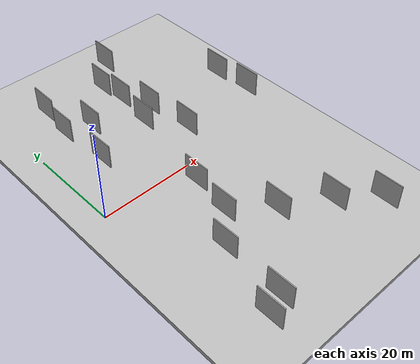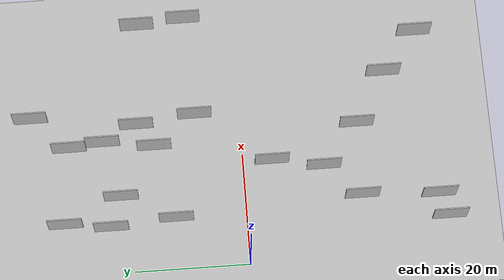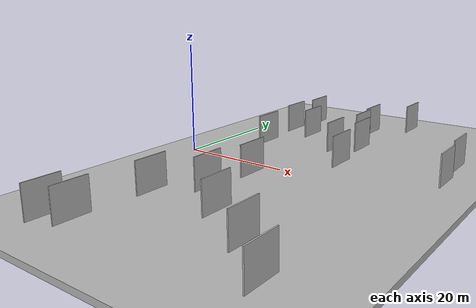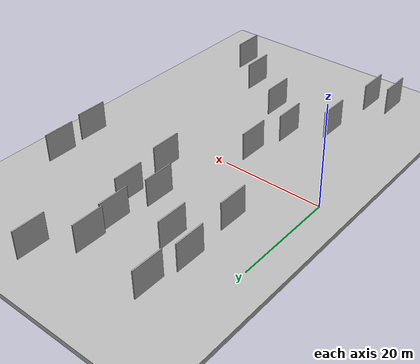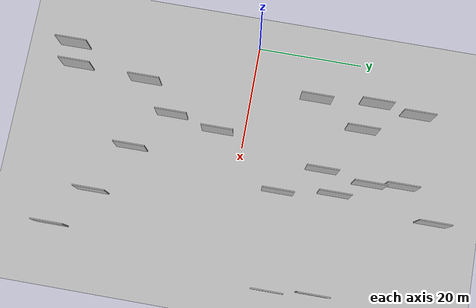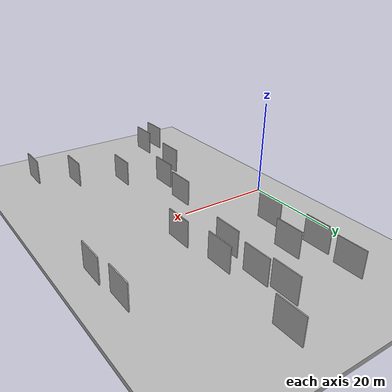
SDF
<?xml version="1.0" encoding="utf-8"?>

<sdf version="1.6">

   <world name="default">

      <gui fullscreen="0">

         <camera name="user_camera">

            <pose>-15 0 4.57585 0 0 0</pose>

            <view_controller>orbit</view_controller>

         </camera>

      </gui>

      <scene>

         <sky>

           <clouds>

             <speed>12</speed>

           </clouds>

         </sky>

         <ambient>0.4 0.4 0.4 1</ambient>

         <background>0.7 0.7 0.7 1</background>

         <shadows>1</shadows>

      </scene>

      <gravity>0 0 -9.8066</gravity>

      <magnetic_field>6e-06 2.3e-05 -4.2e-05</magnetic_field>

      <physics default="0" name="default_physics" type="ode">

         <ode>

            <solver>

               <type>quick</type>

               <iters>10</iters>

               <sor>1.0</sor>

               <use_dynamic_moi_rescaling>0</use_dynamic_moi_rescaling>

            </solver>

            <constraints>

               <cfm>0</cfm>

               <erp>0.2</erp>

               <contact_max_correcting_vel>100</contact_max_correcting_vel>

               <contact_surface_layer>0.001</contact_surface_layer>

            </constraints>

         </ode>

         <max_step_size>0.004</max_step_size>

         <real_time_factor>1</real_time_factor>

         <real_time_update_rate>250</real_time_update_rate>

      </physics>

      <light name="sun" type="directional">

         <cast_shadows>1</cast_shadows>

         <pose>0 0 10 0 0 0</pose>

         <diffuse>0.8 0.8 0.8 1</diffuse>

         <specular>0.2 0.2 0.2 1</specular>

         <attenuation>

            <range>1000</range>

            <constant>0.9</constant>

            <linear>0.01</linear>

            <quadratic>0.001</quadratic>

         </attenuation>

         <direction>-0.5 0.1 -0.9</direction>

      </light>

      <include>

         <name>ground_plane_1</name>

         <uri>model://HANNAS_ground_plane</uri>

         <pose>0 0 0  0 0 0</pose>

      </include>

      <include>

         <name>ground_plane_2</name>

         <uri>model://HANNAS_ground_plane</uri>

         <pose>100 0 0  0 0 0</pose>

      </include>

      <model name="HANNAS_wall_1">

         <static>1</static>

         <pose frame="">27.3750 7.9756 0.0 0.000000 0.000000 1.570796</pose>

         <link name="link">

            <pose frame="">0 0 3.00 0 0 0</pose>

            <collision name="collision">

               <geometry>

                  <box>

                     <size>6.00 0.2 6.00</size>

                  </box>

               </geometry>

               <max_contacts>10</max_contacts>

               <surface>

                  <contact>

                     <ode/>

                  </contact>

                  <bounce/>

                  <friction>

                     <torsional>

                        <ode/>

                     </torsional>

                     <ode/>

                  </friction>

               </surface>

            </collision>

            <visual name="visual">

               <cast_shadows>0</cast_shadows>

               <geometry>

                  <box>

                     <size>6.00 0.2 6.00</size>

                  </box>

               </geometry>

               <material>

                  <script>

                     <uri>model://HANNAS_wall/materials/scripts</uri>

                     <uri>model://HANNAS_wall/materials/textures</uri>

                     <name>vrc/HANNAS_wall</name>

                  </script>

               </material>

            </visual>

            <self_collide>0</self_collide>

            <enable_wind>0</enable_wind>

            <kinematic>0</kinematic>

         </link>

      </model>

      <model name="HANNAS_wall_2">

         <static>1</static>

         <pose frame="">28.4250 36.9319 0.0 0.000000 0.000000 1.570796</pose>

         <link name="link">

            <pose frame="">0 0 3.00 0 0 0</pose>

            <collision name="collision">

               <geometry>

                  <box>

                     <size>6.00 0.2 6.00</size>

                  </box>

               </geometry>

               <max_contacts>10</max_contacts>

               <surface>

                  <contact>

                     <ode/>

                  </contact>

                  <bounce/>

                  <friction>

                     <torsional>

                        <ode/>

                     </torsional>

                     <ode/>

                  </friction>

               </surface>

            </collision>

            <visual name="visual">

               <cast_shadows>0</cast_shadows>

               <geometry>

                  <box>

                     <size>6.00 0.2 6.00</size>

                  </box>

               </geometry>

               <material>

                  <script>

                     <uri>model://HANNAS_wall/materials/scripts</uri>

                     <uri>model://HANNAS_wall/materials/textures</uri>

                     <name>vrc/HANNAS_wall</name>

                  </script>

               </material>

            </visual>

            <self_collide>0</self_collide>

            <enable_wind>0</enable_wind>

            <kinematic>0</kinematic>

         </link>

      </model>

      <model name="HANNAS_wall_3">

         <static>1</static>

         <pose frame="">21.9895 15.3984 0.0 0.000000 0.000000 1.570796</pose>

         <link name="link">

            <pose frame="">0 0 3.00 0 0 0</pose>

            <collision name="collision">

               <geometry>

                  <box>

                     <size>6.00 0.2 6.00</size>

                  </box>

               </geometry>

               <max_contacts>10</max_contacts>

               <surface>

                  <contact>

                     <ode/>

                  </contact>

                  <bounce/>

                  <friction>

                     <torsional>

                        <ode/>

                     </torsional>

                     <ode/>

                  </friction>

               </surface>

            </collision>

            <visual name="visual">

               <cast_shadows>0</cast_shadows>

               <geometry>

                  <box>

                     <size>6.00 0.2 6.00</size>

                  </box>

               </geometry>

               <material>

                  <script>

                     <uri>model://HANNAS_wall/materials/scripts</uri>

                     <uri>model://HANNAS_wall/materials/textures</uri>

                     <name>vrc/HANNAS_wall</name>

                  </script>

               </material>

            </visual>

            <self_collide>0</self_collide>

            <enable_wind>0</enable_wind>

            <kinematic>0</kinematic>

         </link>

      </model>

      <model name="HANNAS_wall_4">

         <static>1</static>

         <pose frame="">13.1419 21.6490 0.0 0.000000 0.000000 1.570796</pose>

         <link name="link">

            <pose frame="">0 0 3.00 0 0 0</pose>

            <collision name="collision">

               <geometry>

                  <box>

                     <size>6.00 0.2 6.00</size>

                  </box>

               </geometry>

               <max_contacts>10</max_contacts>

               <surface>

                  <contact>

                     <ode/>

                  </contact>

                  <bounce/>

                  <friction>

                     <torsional>

                        <ode/>

                     </torsional>

                     <ode/>

                  </friction>

               </surface>

            </collision>

            <visual name="visual">

               <cast_shadows>0</cast_shadows>

               <geometry>

                  <box>

                     <size>6.00 0.2 6.00</size>

                  </box>

               </geometry>

               <material>

                  <script>

                     <uri>model://HANNAS_wall/materials/scripts</uri>

                     <uri>model://HANNAS_wall/materials/textures</uri>

                     <name>vrc/HANNAS_wall</name>

                  </script>

               </material>

            </visual>

            <self_collide>0</self_collide>

            <enable_wind>0</enable_wind>

            <kinematic>0</kinematic>

         </link>

      </model>

      <model name="HANNAS_wall_5">

         <static>1</static>

         <pose frame="">9.8800 -33.7076 0.0 0.000000 0.000000 1.570796</pose>

         <link name="link">

            <pose frame="">0 0 3.00 0 0 0</pose>

            <collision name="collision">

               <geometry>

                  <box>

                     <size>6.00 0.2 6.00</size>

                  </box>

               </geometry>

               <max_contacts>10</max_contacts>

               <surface>

                  <contact>

                     <ode/>

                  </contact>

                  <bounce/>

                  <friction>

                     <torsional>

                        <ode/>

                     </torsional>

                     <ode/>

                  </friction>

               </surface>

            </collision>

            <visual name="visual">

               <cast_shadows>0</cast_shadows>

               <geometry>

                  <box>

                     <size>6.00 0.2 6.00</size>

                  </box>

               </geometry>

               <material>

                  <script>

                     <uri>model://HANNAS_wall/materials/scripts</uri>

                     <uri>model://HANNAS_wall/materials/textures</uri>

                     <name>vrc/HANNAS_wall</name>

                  </script>

               </material>

            </visual>

            <self_collide>0</self_collide>

            <enable_wind>0</enable_wind>

            <kinematic>0</kinematic>

         </link>

      </model>

      <model name="HANNAS_wall_6">

         <static>1</static>

         <pose frame="">16.3582 -14.0604 0.0 0.000000 0.000000 1.570796</pose>

         <link name="link">

            <pose frame="">0 0 3.00 0 0 0</pose>

            <collision name="collision">

               <geometry>

                  <box>

                     <size>6.00 0.2 6.00</size>

                  </box>

               </geometry>

               <max_contacts>10</max_contacts>

               <surface>

                  <contact>

                     <ode/>

                  </contact>

                  <bounce/>

                  <friction>

                     <torsional>

                        <ode/>

                     </torsional>

                     <ode/>

                  </friction>

               </surface>

            </collision>

            <visual name="visual">

               <cast_shadows>0</cast_shadows>

               <geometry>

                  <box>

                     <size>6.00 0.2 6.00</size>

                  </box>

               </geometry>

               <material>

                  <script>

                     <uri>model://HANNAS_wall/materials/scripts</uri>

                     <uri>model://HANNAS_wall/materials/textures</uri>

                     <name>vrc/HANNAS_wall</name>

                  </script>

               </material>

            </visual>

            <self_collide>0</self_collide>

            <enable_wind>0</enable_wind>

            <kinematic>0</kinematic>

         </link>

      </model>

      <model name="HANNAS_wall_7">

         <static>1</static>

         <pose frame="">10.6067 -20.3190 0.0 0.000000 0.000000 1.570796</pose>

         <link name="link">

            <pose frame="">0 0 3.00 0 0 0</pose>

            <collision name="collision">

               <geometry>

                  <box>

                     <size>6.00 0.2 6.00</size>

                  </box>

               </geometry>

               <max_contacts>10</max_contacts>

               <surface>

                  <contact>

                     <ode/>

                  </contact>

                  <bounce/>

                  <friction>

                     <torsional>

                        <ode/>

                     </torsional>

                     <ode/>

                  </friction>

               </surface>

            </collision>

            <visual name="visual">

               <cast_shadows>0</cast_shadows>

               <geometry>

                  <box>

                     <size>6.00 0.2 6.00</size>

                  </box>

               </geometry>

               <material>

                  <script>

                     <uri>model://HANNAS_wall/materials/scripts</uri>

                     <uri>model://HANNAS_wall/materials/textures</uri>

                     <name>vrc/HANNAS_wall</name>

                  </script>

               </material>

            </visual>

            <self_collide>0</self_collide>

            <enable_wind>0</enable_wind>

            <kinematic>0</kinematic>

         </link>

      </model>

      <model name="HANNAS_wall_8">

         <static>1</static>

         <pose frame="">45.6491 8.9044 0.0 0.000000 0.000000 1.570796</pose>

         <link name="link">

            <pose frame="">0 0 3.00 0 0 0</pose>

            <collision name="collision">

               <geometry>

                  <box>

                     <size>6.00 0.2 6.00</size>

                  </box>

               </geometry>

               <max_contacts>10</max_contacts>

               <surface>

                  <contact>

                     <ode/>

                  </contact>

                  <bounce/>

                  <friction>

                     <torsional>

                        <ode/>

                     </torsional>

                     <ode/>

                  </friction>

               </surface>

            </collision>

            <visual name="visual">

               <cast_shadows>0</cast_shadows>

               <geometry>

                  <box>

                     <size>6.00 0.2 6.00</size>

                  </box>

               </geometry>

               <material>

                  <script>

                     <uri>model://HANNAS_wall/materials/scripts</uri>

                     <uri>model://HANNAS_wall/materials/textures</uri>

                     <name>vrc/HANNAS_wall</name>

                  </script>

               </material>

            </visual>

            <self_collide>0</self_collide>

            <enable_wind>0</enable_wind>

            <kinematic>0</kinematic>

         </link>

      </model>

      <model name="HANNAS_wall_9">

         <static>1</static>

         <pose frame="">23.7692 -20.4588 0.0 0.000000 0.000000 1.570796</pose>

         <link name="link">

            <pose frame="">0 0 3.00 0 0 0</pose>

            <collision name="collision">

               <geometry>

                  <box>

                     <size>6.00 0.2 6.00</size>

                  </box>

               </geometry>

               <max_contacts>10</max_contacts>

               <surface>

                  <contact>

                     <ode/>

                  </contact>

                  <bounce/>

                  <friction>

                     <torsional>

                        <ode/>

                     </torsional>

                     <ode/>

                  </friction>

               </surface>

            </collision>

            <visual name="visual">

               <cast_shadows>0</cast_shadows>

               <geometry>

                  <box>

                     <size>6.00 0.2 6.00</size>

                  </box>

               </geometry>

               <material>

                  <script>

                     <uri>model://HANNAS_wall/materials/scripts</uri>

                     <uri>model://HANNAS_wall/materials/textures</uri>

                     <name>vrc/HANNAS_wall</name>

                  </script>

               </material>

            </visual>

            <self_collide>0</self_collide>

            <enable_wind>0</enable_wind>

            <kinematic>0</kinematic>

         </link>

      </model>

      <model name="HANNAS_wall_10">

         <static>1</static>

         <pose frame="">44.8782 17.2333 0.0 0.000000 0.000000 1.570796</pose>

         <link name="link">

            <pose frame="">0 0 3.00 0 0 0</pose>

            <collision name="collision">

               <geometry>

                  <box>

                     <size>6.00 0.2 6.00</size>

                  </box>

               </geometry>

               <max_contacts>10</max_contacts>

               <surface>

                  <contact>

                     <ode/>

                  </contact>

                  <bounce/>

                  <friction>

                     <torsional>

                        <ode/>

                     </torsional>

                     <ode/>

                  </friction>

               </surface>

            </collision>

            <visual name="visual">

               <cast_shadows>0</cast_shadows>

               <geometry>

                  <box>

                     <size>6.00 0.2 6.00</size>

                  </box>

               </geometry>

               <material>

                  <script>

                     <uri>model://HANNAS_wall/materials/scripts</uri>

                     <uri>model://HANNAS_wall/materials/textures</uri>

                     <name>vrc/HANNAS_wall</name>

                  </script>

               </material>

            </visual>

            <self_collide>0</self_collide>

            <enable_wind>0</enable_wind>

            <kinematic>0</kinematic>

         </link>

      </model>

      <model name="HANNAS_wall_11">

         <static>1</static>

         <pose frame="">33.0308 -26.0129 0.0 0.000000 0.000000 1.570796</pose>

         <link name="link">

            <pose frame="">0 0 3.00 0 0 0</pose>

            <collision name="collision">

               <geometry>

                  <box>

                     <size>6.00 0.2 6.00</size>

                  </box>

               </geometry>

               <max_contacts>10</max_contacts>

               <surface>

                  <contact>

                     <ode/>

                  </contact>

                  <bounce/>

                  <friction>

                     <torsional>

                        <ode/>

                     </torsional>

                     <ode/>

                  </friction>

               </surface>

            </collision>

            <visual name="visual">

               <cast_shadows>0</cast_shadows>

               <geometry>

                  <box>

                     <size>6.00 0.2 6.00</size>

                  </box>

               </geometry>

               <material>

                  <script>

                     <uri>model://HANNAS_wall/materials/scripts</uri>

                     <uri>model://HANNAS_wall/materials/textures</uri>

                     <name>vrc/HANNAS_wall</name>

                  </script>

               </material>

            </visual>

            <self_collide>0</self_collide>

            <enable_wind>0</enable_wind>

            <kinematic>0</kinematic>

         </link>

      </model>

      <model name="HANNAS_wall_12">

         <static>1</static>

         <pose frame="">23.2267 24.4072 0.0 0.000000 0.000000 1.570796</pose>

         <link name="link">

            <pose frame="">0 0 3.00 0 0 0</pose>

            <collision name="collision">

               <geometry>

                  <box>

                     <size>6.00 0.2 6.00</size>

                  </box>

               </geometry>

               <max_contacts>10</max_contacts>

               <surface>

                  <contact>

                     <ode/>

                  </contact>

                  <bounce/>

                  <friction>

                     <torsional>

                        <ode/>

                     </torsional>

                     <ode/>

                  </friction>

               </surface>

            </collision>

            <visual name="visual">

               <cast_shadows>0</cast_shadows>

               <geometry>

                  <box>

                     <size>6.00 0.2 6.00</size>

                  </box>

               </geometry>

               <material>

                  <script>

                     <uri>model://HANNAS_wall/materials/scripts</uri>

                     <uri>model://HANNAS_wall/materials/textures</uri>

                     <name>vrc/HANNAS_wall</name>

                  </script>

               </material>

            </visual>

            <self_collide>0</self_collide>

            <enable_wind>0</enable_wind>

            <kinematic>0</kinematic>

         </link>

      </model>

      <model name="HANNAS_wall_13">

         <static>1</static>

         <pose frame="">7.7175 23.6009 0.0 0.000000 0.000000 1.570796</pose>

         <link name="link">

            <pose frame="">0 0 3.00 0 0 0</pose>

            <collision name="collision">

               <geometry>

                  <box>

                     <size>6.00 0.2 6.00</size>

                  </box>

               </geometry>

               <max_contacts>10</max_contacts>

               <surface>

                  <contact>

                     <ode/>

                  </contact>

                  <bounce/>

                  <friction>

                     <torsional>

                        <ode/>

                     </torsional>

                     <ode/>

                  </friction>

               </surface>

            </collision>

            <visual name="visual">

               <cast_shadows>0</cast_shadows>

               <geometry>

                  <box>

                     <size>6.00 0.2 6.00</size>

                  </box>

               </geometry>

               <material>

                  <script>

                     <uri>model://HANNAS_wall/materials/scripts</uri>

                     <uri>model://HANNAS_wall/materials/textures</uri>

                     <name>vrc/HANNAS_wall</name>

                  </script>

               </material>

            </visual>

            <self_collide>0</self_collide>

            <enable_wind>0</enable_wind>

            <kinematic>0</kinematic>

         </link>

      </model>

      <model name="HANNAS_wall_14">

         <static>1</static>

         <pose frame="">40.3252 -32.2121 0.0 0.000000 0.000000 1.570796</pose>

         <link name="link">

            <pose frame="">0 0 3.00 0 0 0</pose>

            <collision name="collision">

               <geometry>

                  <box>

                     <size>6.00 0.2 6.00</size>

                  </box>

               </geometry>

               <max_contacts>10</max_contacts>

               <surface>

                  <contact>

                     <ode/>

                  </contact>

                  <bounce/>

                  <friction>

                     <torsional>

                        <ode/>

                     </torsional>

                     <ode/>

                  </friction>

               </surface>

            </collision>

            <visual name="visual">

               <cast_shadows>0</cast_shadows>

               <geometry>

                  <box>

                     <size>6.00 0.2 6.00</size>

                  </box>

               </geometry>

               <material>

                  <script>

                     <uri>model://HANNAS_wall/materials/scripts</uri>

                     <uri>model://HANNAS_wall/materials/textures</uri>

                     <name>vrc/HANNAS_wall</name>

                  </script>

               </material>

            </visual>

            <self_collide>0</self_collide>

            <enable_wind>0</enable_wind>

            <kinematic>0</kinematic>

         </link>

      </model>

      <model name="HANNAS_wall_15">

         <static>1</static>

         <pose frame="">5.8313 -35.1774 0.0 0.000000 0.000000 1.570796</pose>

         <link name="link">

            <pose frame="">0 0 3.00 0 0 0</pose>

            <collision name="collision">

               <geometry>

                  <box>

                     <size>6.00 0.2 6.00</size>

                  </box>

               </geometry>

               <max_contacts>10</max_contacts>

               <surface>

                  <contact>

                     <ode/>

                  </contact>

                  <bounce/>

                  <friction>

                     <torsional>

                        <ode/>

                     </torsional>

                     <ode/>

                  </friction>

               </surface>

            </collision>

            <visual name="visual">

               <cast_shadows>0</cast_shadows>

               <geometry>

                  <box>

                     <size>6.00 0.2 6.00</size>

                  </box>

               </geometry>

               <material>

                  <script>

                     <uri>model://HANNAS_wall/materials/scripts</uri>

                     <uri>model://HANNAS_wall/materials/textures</uri>

                     <name>vrc/HANNAS_wall</name>

                  </script>

               </material>

            </visual>

            <self_collide>0</self_collide>

            <enable_wind>0</enable_wind>

            <kinematic>0</kinematic>

         </link>

      </model>

      <model name="HANNAS_wall_16">

         <static>1</static>

         <pose frame="">22.5663 30.3537 0.0 0.000000 0.000000 1.570796</pose>

         <link name="link">

            <pose frame="">0 0 3.00 0 0 0</pose>

            <collision name="collision">

               <geometry>

                  <box>

                     <size>6.00 0.2 6.00</size>

                  </box>

               </geometry>

               <max_contacts>10</max_contacts>

               <surface>

                  <contact>

                     <ode/>

                  </contact>

                  <bounce/>

                  <friction>

                     <torsional>

                        <ode/>

                     </torsional>

                     <ode/>

                  </friction>

               </surface>

            </collision>

            <visual name="visual">

               <cast_shadows>0</cast_shadows>

               <geometry>

                  <box>

                     <size>6.00 0.2 6.00</size>

                  </box>

               </geometry>

               <material>

                  <script>

                     <uri>model://HANNAS_wall/materials/scripts</uri>

                     <uri>model://HANNAS_wall/materials/textures</uri>

                     <name>vrc/HANNAS_wall</name>

                  </script>

               </material>

            </visual>

            <self_collide>0</self_collide>

            <enable_wind>0</enable_wind>

            <kinematic>0</kinematic>

         </link>

      </model>

      <model name="HANNAS_wall_17">

         <static>1</static>

         <pose frame="">17.9577 -5.0651 0.0 0.000000 0.000000 1.570796</pose>

         <link name="link">

            <pose frame="">0 0 3.00 0 0 0</pose>

            <collision name="collision">

               <geometry>

                  <box>

                     <size>6.00 0.2 6.00</size>

                  </box>

               </geometry>

               <max_contacts>10</max_contacts>

               <surface>

                  <contact>

                     <ode/>

                  </contact>

                  <bounce/>

                  <friction>

                     <torsional>

                        <ode/>

                     </torsional>

                     <ode/>

                  </friction>

               </surface>

            </collision>

            <visual name="visual">

               <cast_shadows>0</cast_shadows>

               <geometry>

                  <box>

                     <size>6.00 0.2 6.00</size>

                  </box>

               </geometry>

               <material>

                  <script>

                     <uri>model://HANNAS_wall/materials/scripts</uri>

                     <uri>model://HANNAS_wall/materials/textures</uri>

                     <name>vrc/HANNAS_wall</name>

                  </script>

               </material>

            </visual>

            <self_collide>0</self_collide>

            <enable_wind>0</enable_wind>

            <kinematic>0</kinematic>

         </link>

      </model>

      <model name="HANNAS_wall_18">

         <static>1</static>

         <pose frame="">8.6416 12.2719 0.0 0.000000 0.000000 1.570796</pose>

         <link name="link">

            <pose frame="">0 0 3.00 0 0 0</pose>

            <collision name="collision">

               <geometry>

                  <box>

                     <size>6.00 0.2 6.00</size>

                  </box>

               </geometry>

               <max_contacts>10</max_contacts>

               <surface>

                  <contact>

                     <ode/>

                  </contact>

                  <bounce/>

                  <friction>

                     <torsional>

                        <ode/>

                     </torsional>

                     <ode/>

                  </friction>

               </surface>

            </collision>

            <visual name="visual">

               <cast_shadows>0</cast_shadows>

               <geometry>

                  <box>

                     <size>6.00 0.2 6.00</size>

                  </box>

               </geometry>

               <material>

                  <script>

                     <uri>model://HANNAS_wall/materials/scripts</uri>

                     <uri>model://HANNAS_wall/materials/textures</uri>

                     <name>vrc/HANNAS_wall</name>

                  </script>

               </material>

            </visual>

            <self_collide>0</self_collide>

            <enable_wind>0</enable_wind>

            <kinematic>0</kinematic>

         </link>

      </model>

      <model name="HANNAS_wall_19">

         <static>1</static>

         <pose frame="">26.1121 18.3290 0.0 0.000000 0.000000 1.570796</pose>

         <link name="link">

            <pose frame="">0 0 3.00 0 0 0</pose>

            <collision name="collision">

               <geometry>

                  <box>

                     <size>6.00 0.2 6.00</size>

                  </box>

               </geometry>

               <max_contacts>10</max_contacts>

               <surface>

                  <contact>

                     <ode/>

                  </contact>

                  <bounce/>

                  <friction>

                     <torsional>

                        <ode/>

                     </torsional>

                     <ode/>

                  </friction>

               </surface>

            </collision>

            <visual name="visual">

               <cast_shadows>0</cast_shadows>

               <geometry>

                  <box>

                     <size>6.00 0.2 6.00</size>

                  </box>

               </geometry>

               <material>

                  <script>

                     <uri>model://HANNAS_wall/materials/scripts</uri>

                     <uri>model://HANNAS_wall/materials/textures</uri>

                     <name>vrc/HANNAS_wall</name>

                  </script>

               </material>

            </visual>

            <self_collide>0</self_collide>

            <enable_wind>0</enable_wind>

            <kinematic>0</kinematic>

         </link>

      </model>

      <model name="HANNAS_wall_20">

         <static>1</static>

         <pose frame="">8.6814 31.5360 0.0 0.000000 0.000000 1.570796</pose>

         <link name="link">

            <pose frame="">0 0 3.00 0 0 0</pose>

            <collision name="collision">

               <geometry>

                  <box>

                     <size>6.00 0.2 6.00</size>

                  </box>

               </geometry>

               <max_contacts>10</max_contacts>

               <surface>

                  <contact>

                     <ode/>

                  </contact>

                  <bounce/>

                  <friction>

                     <torsional>

                        <ode/>

                     </torsional>

                     <ode/>

                  </friction>

               </surface>

            </collision>

            <visual name="visual">

               <cast_shadows>0</cast_shadows>

               <geometry>

                  <box>

                     <size>6.00 0.2 6.00</size>

                  </box>

               </geometry>

               <material>

                  <script>

                     <uri>model://HANNAS_wall/materials/scripts</uri>

                     <uri>model://HANNAS_wall/materials/textures</uri>

                     <name>vrc/HANNAS_wall</name>

                  </script>

               </material>

            </visual>

            <self_collide>0</self_collide>

            <enable_wind>0</enable_wind>

            <kinematic>0</kinematic>

         </link>

      </model>

   </world>

</sdf>

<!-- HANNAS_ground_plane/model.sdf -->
<sdf version="1.4">
<model name="HANNAS_ground_plane">
  <static>true</static>
    <link name="link">
      <collision name="collision">
        <geometry>
          <plane>
            <normal>0 0 1</normal>
            <size>1000 1000</size>
          </plane>
        </geometry>
        <surface>
          <friction>
            <ode>
              <mu>100</mu>
              <mu2>50</mu2>
            </ode>
          </friction>
        </surface>
      </collision>
      <visual name="visual">
        <cast_shadows>false</cast_shadows>
        <geometry>
          <plane>
            <normal>0 0 1</normal>
            <size>1000 1000</size>
          </plane>
        </geometry>
        <material>
          <script>
            <uri>model://HANNAS_ground_plane/materials/scripts/HANNAS_ground_plane.material</uri>
	    <uri>model://HANNAS_ground_plane/materials/textures</uri>
            <name>HANNASGroundPlane/Image</name>
          </script>
        </material>
      </visual>
    </link>
  </model>
</sdf>
